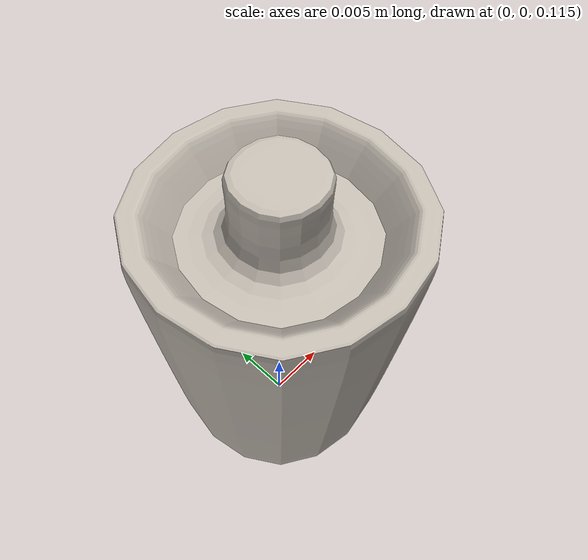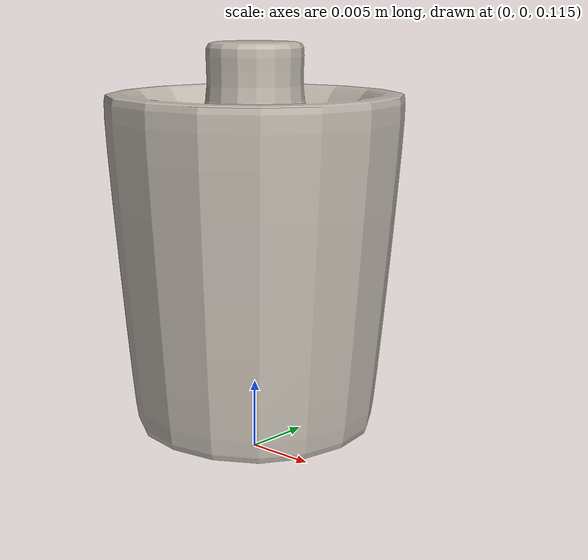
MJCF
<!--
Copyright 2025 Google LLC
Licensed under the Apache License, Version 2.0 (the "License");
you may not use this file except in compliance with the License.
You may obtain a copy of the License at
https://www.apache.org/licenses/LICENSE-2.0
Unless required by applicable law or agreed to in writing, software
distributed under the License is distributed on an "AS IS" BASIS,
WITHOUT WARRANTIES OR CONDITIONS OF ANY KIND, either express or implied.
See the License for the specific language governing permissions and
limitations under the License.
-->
<mujoco model="cap">
  <compiler assetdir="meshes" texturedir="materials"/>

  <asset>
    <texture type="2d" name="cap_texture" file="4k_textures/marker_4k_BaseColor.png"/>
    <material name="cap_texture" texture="cap_texture"/>

    <mesh file="cap.obj" scale = "1 1 1"/>
    <mesh file="cap_collision_001.obj" scale = "1 1 1"/>
    <mesh file="cap_collision_002.obj" scale = "1 1 1"/>
    <mesh file="cap_collision_003.obj" scale = "1 1 1"/>
    <mesh file="cap_collision_004.obj" scale = "1 1 1"/>
    <mesh file="cap_collision_005.obj" scale = "1 1 1"/>
    <mesh file="cap_collision_006.obj" scale = "1 1 1"/>
    <mesh file="cap_collision_007.obj" scale = "1 1 1"/>
    <mesh file="cap_collision_008.obj" scale = "1 1 1"/>
    <mesh file="cap_collision_009.obj" scale = "1 1 1"/>
    <mesh file="cap_collision_high_friction_001.obj" scale = "1 1 1"/>
    <mesh file="cap_collision_high_friction_002.obj" scale = "1 1 1"/>
    <mesh file="cap_collision_high_friction_003.obj" scale = "1 1 1"/>
    <mesh file="cap_collision_high_friction_004.obj" scale = "1 1 1"/>
    <mesh file="cap_collision_high_friction_005.obj" scale = "1 1 1"/>
    <mesh file="cap_collision_high_friction_006.obj" scale = "1 1 1"/>
    <mesh file="cap_collision_high_friction_007.obj" scale = "1 1 1"/>
    <mesh file="cap_collision_high_friction_008.obj" scale = "1 1 1"/>
    <mesh file="cap_collision_high_friction_009.obj" scale = "1 1 1"/>
    <mesh file="cap_collision_high_friction_010.obj" scale = "1 1 1"/>
    <mesh file="cap_collision_high_friction_011.obj" scale = "1 1 1"/>
    <mesh file="cap_collision_high_friction_012.obj" scale = "1 1 1"/>
    <mesh file="cap_collision_high_friction_013.obj" scale = "1 1 1"/>
    <mesh file="cap_collision_high_friction_014.obj" scale = "1 1 1"/>
    <mesh file="cap_collision_high_friction_015.obj" scale = "1 1 1"/>
    <mesh file="cap_collision_high_friction_016.obj" scale = "1 1 1"/>

  </asset>

  <default>
    <default class="cap">
      <default class="visual_cap">
        <geom type="mesh" group="2" density="200" contype="0" conaffinity="0" material="cap_texture"/>
      </default>
      <default class="collision_cap_external">
        <geom type="mesh" group="3" density="0" solref=".004 1" friction="1.0 0.01 0.01" condim="6"/>
      </default>
      <default class="collision_cap_high_friction">
        <geom type="mesh" group="4" density="0" solref=".004 1" friction="0.5 0.01 0.01" condim="6" solimp="0.99 0.99 0.01"/>
      </default>
    </default>
  </default>

  <worldbody>
    <body childclass="cap" pos="0 0 0.01">
      <freejoint/>
      <geom class="visual_cap" mesh="cap" euler="0 90 90"/>
      <geom class="collision_cap_external" mesh="cap_collision_001" euler="0 90 90"/>
      <geom class="collision_cap_external" mesh="cap_collision_002" euler="0 90 90"/>
      <geom class="collision_cap_external" mesh="cap_collision_003" euler="0 90 90"/>
      <geom class="collision_cap_external" mesh="cap_collision_004" euler="0 90 90"/>
      <geom class="collision_cap_external" mesh="cap_collision_005" euler="0 90 90"/>
      <geom class="collision_cap_external" mesh="cap_collision_006" euler="0 90 90"/>
      <geom class="collision_cap_external" mesh="cap_collision_007" euler="0 90 90"/>
      <geom class="collision_cap_external" mesh="cap_collision_008" euler="0 90 90"/>
      <geom class="collision_cap_external" mesh="cap_collision_009" euler="0 90 90"/>
      <geom class="collision_cap_high_friction" mesh="cap_collision_high_friction_001" euler="0 90 90"/>
      <geom class="collision_cap_high_friction" mesh="cap_collision_high_friction_002" euler="0 90 90"/>
      <geom class="collision_cap_high_friction" mesh="cap_collision_high_friction_003" euler="0 90 90"/>
      <geom class="collision_cap_high_friction" mesh="cap_collision_high_friction_004" euler="0 90 90"/>
      <geom class="collision_cap_high_friction" mesh="cap_collision_high_friction_005" euler="0 90 90"/>
      <geom class="collision_cap_high_friction" mesh="cap_collision_high_friction_006" euler="0 90 90"/>
      <geom class="collision_cap_high_friction" mesh="cap_collision_high_friction_007" euler="0 90 90"/>
      <geom class="collision_cap_high_friction" mesh="cap_collision_high_friction_008" euler="0 90 90"/>
      <geom class="collision_cap_high_friction" mesh="cap_collision_high_friction_009" euler="0 90 90"/>
      <geom class="collision_cap_high_friction" mesh="cap_collision_high_friction_010" euler="0 90 90"/>
      <geom class="collision_cap_high_friction" mesh="cap_collision_high_friction_011" euler="0 90 90"/>
      <geom class="collision_cap_high_friction" mesh="cap_collision_high_friction_012" euler="0 90 90"/>
      <geom class="collision_cap_high_friction" mesh="cap_collision_high_friction_013" euler="0 90 90"/>
      <geom class="collision_cap_high_friction" mesh="cap_collision_high_friction_014" euler="0 90 90"/>
      <geom class="collision_cap_high_friction" mesh="cap_collision_high_friction_015" euler="0 90 90"/>
      <geom class="collision_cap_high_friction" mesh="cap_collision_high_friction_016" euler="0 90 90"/>
    </body>
  </worldbody>
</mujoco>
